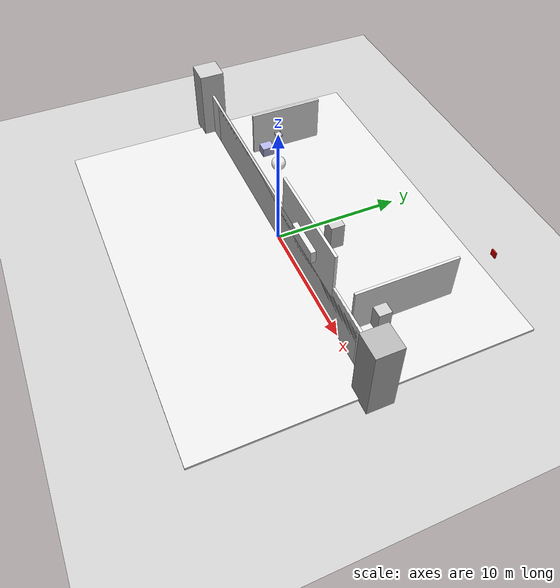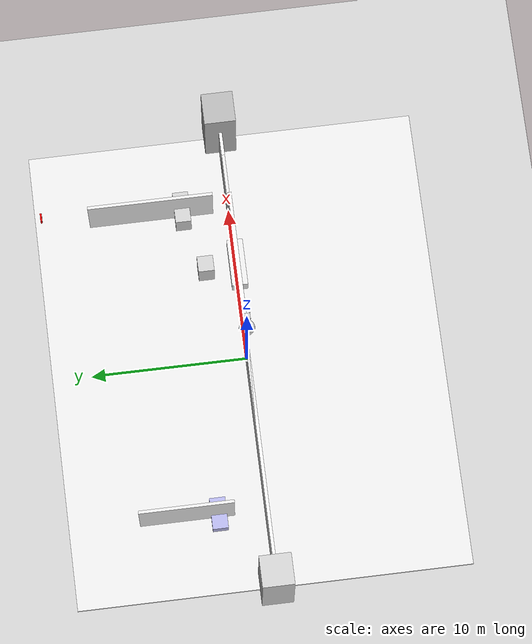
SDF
<?xml version="1.0"?>
<sdf version="1.6">
  <world name="hospital">
    <!-- Physics settings -->
    <physics name="default_physics" default="0" type="ode">
      <max_step_size>0.001</max_step_size>
      <real_time_factor>1</real_time_factor>
      <real_time_update_rate>1000</real_time_update_rate>
      <gravity>0 0 -9.81</gravity>
    </physics>

    <!-- Lighting -->
    <include>
      <uri>model://sun</uri>
    </include>

    <!-- Ground plane -->
    <include>
      <uri>model://ground_plane</uri>
    </include>

    <!-- Hospital Building Structure -->

    <!-- Ground Floor -->
    <!-- Main Entrance -->
    <model name="hospital_ground_floor">
      <pose>0 0 0.1 0 0 0</pose>
      <link name="ground_floor_link">
        <collision name="collision">
          <geometry>
            <box>
              <size>30 25 0.2</size>
            </box>
          </geometry>
        </collision>
        <visual name="visual">
          <geometry>
            <box>
              <size>30 25 0.2</size>
            </box>
          </geometry>
          <material>
            <ambient>0.9 0.9 0.9 1</ambient>
            <diffuse>0.9 0.9 0.9 1</diffuse>
          </material>
        </visual>
      </link>
    </model>

    <!-- Hospital Walls -->
    <model name="hospital_walls">
      <pose>0 0 2 0 0 0</pose>
      <link name="walls_link">
        <collision name="collision">
          <geometry>
            <box>
              <size>30 0.2 4</size>
            </box>
          </geometry>
        </collision>
        <visual name="visual">
          <geometry>
            <box>
              <size>30 0.2 4</size>
            </box>
          </geometry>
          <material>
            <ambient>0.95 0.95 0.95 1</ambient>
            <diffuse>0.95 0.95 0.95 1</diffuse>
          </material>
        </visual>
      </link>
    </model>

    <!-- Emergency Room -->
    <model name="emergency_room">
      <pose>10 5 2 0 0 0</pose>
      <link name="er_wall_1">
        <collision name="collision">
          <geometry>
            <box>
              <size>0.2 8 4</size>
            </box>
          </geometry>
        </collision>
        <visual name="visual">
          <geometry>
            <box>
              <size>0.2 8 4</size>
            </box>
          </geometry>
          <material>
            <ambient>0.9 0.9 0.9 1</ambient>
            <diffuse>0.9 0.9 0.9 1</diffuse>
          </material>
        </visual>
      </link>
    </model>

    <!-- Emergency Room Equipment -->
    <model name="er_equipment">
      <pose>10 3 1 0 0 0</pose>
      <link name="equipment_link">
        <collision name="collision">
          <geometry>
            <box>
              <size>2 1 2</size>
            </box>
          </geometry>
        </collision>
        <visual name="visual">
          <geometry>
            <box>
              <size>2 1 2</size>
            </box>
          </geometry>
          <material>
            <ambient>0.8 0.8 0.8 1</ambient>
            <diffuse>0.8 0.8 0.8 1</diffuse>
          </material>
        </visual>
      </link>
    </model>

    <!-- Patient Room -->
    <model name="patient_room">
      <pose>-10 5 2 0 0 0</pose>
      <link name="patient_wall_1">
        <collision name="collision">
          <geometry>
            <box>
              <size>0.2 6 4</size>
            </box>
          </geometry>
        </collision>
        <visual name="visual">
          <geometry>
            <box>
              <size>0.2 6 4</size>
            </box>
          </geometry>
          <material>
            <ambient>0.9 0.9 0.9 1</ambient>
            <diffuse>0.9 0.9 0.9 1</diffuse>
          </material>
        </visual>
      </link>
    </model>

    <!-- Patient Bed -->
    <model name="patient_bed">
      <pose>-10 3 0.5 0 0 0</pose>
      <link name="bed_link">
        <collision name="collision">
          <geometry>
            <box>
              <size>2 1 1</size>
            </box>
          </geometry>
        </collision>
        <visual name="visual">
          <geometry>
            <box>
              <size>2 1 1</size>
            </box>
          </geometry>
          <material>
            <ambient>0.7 0.7 0.9 1</ambient>
            <diffuse>0.7 0.7 0.9 1</diffuse>
          </material>
        </visual>
      </link>
    </model>

    <!-- Corridor -->
    <model name="main_corridor">
      <pose>0 0 2 0 0 0</pose>
      <link name="corridor_wall_1">
        <collision name="collision">
          <geometry>
            <box>
              <size>25 0.2 4</size>
            </box>
          </geometry>
        </collision>
        <visual name="visual">
          <geometry>
            <box>
              <size>25 0.2 4</size>
            </box>
          </geometry>
          <material>
            <ambient>0.9 0.9 0.9 1</ambient>
            <diffuse>0.9 0.9 0.9 1</diffuse>
          </material>
        </visual>
      </link>
    </model>

    <!-- Second Floor -->
    <!-- Operating Room -->
    <model name="operating_room">
      <pose>5 0 5 0 0 0</pose>
      <link name="or_wall_1">
        <collision name="collision">
          <geometry>
            <box>
              <size>8 0.2 4</size>
            </box>
          </geometry>
        </collision>
        <visual name="visual">
          <geometry>
            <box>
              <size>8 0.2 4</size>
            </box>
          </geometry>
          <material>
            <ambient>0.95 0.95 0.95 1</ambient>
            <diffuse>0.95 0.95 0.95 1</diffuse>
          </material>
        </visual>
      </link>
    </model>

    <!-- Operating Table -->
    <model name="operating_table">
      <pose>5 0 4.5 0 0 0</pose>
      <link name="table_link">
        <collision name="collision">
          <geometry>
            <box>
              <size>3 1 1</size>
            </box>
          </geometry>
        </collision>
        <visual name="visual">
          <geometry>
            <box>
              <size>3 1 1</size>
            </box>
          </geometry>
          <material>
            <ambient>0.9 0.9 0.9 1</ambient>
            <diffuse>0.9 0.9 0.9 1</diffuse>
          </material>
        </visual>
      </link>
    </model>

    <!-- Medical Equipment -->
    <model name="medical_equipment">
      <pose>5 2 4.5 0 0 0</pose>
      <link name="equipment_link">
        <collision name="collision">
          <geometry>
            <box>
              <size>1 1 2</size>
            </box>
          </geometry>
        </collision>
        <visual name="visual">
          <geometry>
            <box>
              <size>1 1 2</size>
            </box>
          </geometry>
          <material>
            <ambient>0.8 0.8 0.8 1</ambient>
            <diffuse>0.8 0.8 0.8 1</diffuse>
          </material>
        </visual>
      </link>
    </model>

    <!-- Stairwell -->
    <model name="stairwell">
      <pose>15 0 2 0 0 0</pose>
      <link name="stairwell_wall">
        <collision name="collision">
          <geometry>
            <box>
              <size>2 2 8</size>
            </box>
          </geometry>
        </collision>
        <visual name="visual">
          <geometry>
            <box>
              <size>2 2 8</size>
            </box>
          </geometry>
          <material>
            <ambient>0.7 0.7 0.7 1</ambient>
            <diffuse>0.7 0.7 0.7 1</diffuse>
          </material>
        </visual>
      </link>
    </model>

    <!-- Elevator -->
    <model name="elevator">
      <pose>-15 0 2 0 0 0</pose>
      <link name="elevator_wall">
        <collision name="collision">
          <geometry>
            <box>
              <size>2 2 8</size>
            </box>
          </geometry>
        </collision>
        <visual name="visual">
          <geometry>
            <box>
              <size>2 2 8</size>
            </box>
          </geometry>
          <material>
            <ambient>0.8 0.8 0.8 1</ambient>
            <diffuse>0.8 0.8 0.8 1</diffuse>
          </material>
        </visual>
      </link>
    </model>

    <!-- Lighting -->
    <!-- Ceiling Lights -->
    <model name="ceiling_light_1">
      <pose>0 0 7.5 0 0 0</pose>
      <link name="light_link">
        <visual name="visual">
          <geometry>
            <sphere>
              <radius>0.5</radius>
            </sphere>
          </geometry>
          <material>
            <ambient>1 1 1 1</ambient>
            <diffuse>1 1 1 1</diffuse>
            <emissive>1 1 1 1</emissive>
          </material>
        </visual>
      </link>
      <light type="point" name="ceiling_light_1">
        <pose>0 0 0 0 0 0</pose>
        <diffuse>1 1 1 1</diffuse>
        <specular>0.1 0.1 0.1 1</specular>
        <attenuation>
          <range>15</range>
          <constant>0.5</constant>
          <linear>0.01</linear>
          <quadratic>0.001</quadratic>
        </attenuation>
        <cast_shadows>true</cast_shadows>
      </light>
    </model>

    <!-- Emergency Exit Signs -->
    <model name="exit_sign_1">
      <pose>10 12 3 0 0 0</pose>
      <link name="sign_link">
        <visual name="visual">
          <geometry>
            <box>
              <size>0.5 0.1 0.5</size>
            </box>
          </geometry>
          <material>
            <ambient>1 0 0 1</ambient>
            <diffuse>1 0 0 1</diffuse>
            <emissive>1 0 0 1</emissive>
          </material>
        </visual>
      </link>
    </model>

    <!-- Spawn quadcopter -->
    <include>
      <uri>model://quadcopter</uri>
      <pose>0 0 10 0 0 0</pose>
    </include>

    <!-- GUI settings -->
    <gui fullscreen='0'>
      <camera name='user_camera'>
        <pose>30 -30 20 0 0.785 0.785</pose>
        <view_controller>orbit</view_controller>
        <projection_type>perspective</projection_type>
      </camera>
    </gui>

    <!-- Plugin for ROS 2 bridge -->
    <plugin name="gazebo_ros_state" filename="libgazebo_ros_state.so">
      <ros>
        <namespace>/gazebo</namespace>
        <remapping>model_states:=model_states</remapping>
        <remapping>link_states:=link_states</remapping>
      </ros>
    </plugin>

    <!-- Plugin for ROS 2 control -->
    <plugin name="gazebo_ros_control" filename="libgazebo_ros_control.so">
      <robotNamespace>/quadcopter</robotNamespace>
      <robotParam>robot_description</robotParam>
    </plugin>
  </world>
</sdf>

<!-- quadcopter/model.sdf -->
<sdf version="1.6">
  <model name="quadcopter">
    <link name="base_link">
      <pose>0 0 0 0 0 0</pose>
      <inertial>
        <mass>1.5</mass>
        <inertia>
          <ixx>0.029125</ixx>
          <ixy>0</ixy>
          <ixz>0</ixz>
          <iyy>0.029125</iyy>
          <iyz>0</iyz>
          <izz>0.055225</izz>
        </inertia>
      </inertial>
      <collision name="collision">
        <geometry>
          <box>
            <size>0.4 0.4 0.1</size>
          </box>
        </geometry>
      </collision>
      <visual name="visual">
        <geometry>
          <box>
            <size>0.4 0.4 0.1</size>
          </box>
        </geometry>
        <material>
          <ambient>0.8 0.8 0.8 1</ambient>
          <diffuse>0.8 0.8 0.8 1</diffuse>
        </material>
      </visual>
    </link>

    <!-- Front Left Motor -->
    <link name="motor_fl">
      <pose>0.2 0.2 0.05 0 0 0</pose>
      <inertial>
        <mass>0.1</mass>
        <inertia>
          <ixx>0.001</ixx>
          <ixy>0</ixy>
          <ixz>0</ixz>
          <iyy>0.001</iyy>
          <iyz>0</iyz>
          <izz>0.001</izz>
        </inertia>
      </inertial>
      <collision name="collision">
        <geometry>
          <cylinder>
            <radius>0.02</radius>
            <length>0.05</length>
          </cylinder>
        </geometry>
      </collision>
      <visual name="visual">
        <geometry>
          <cylinder>
            <radius>0.02</radius>
            <length>0.05</length>
          </cylinder>
        </geometry>
        <material>
          <ambient>0.2 0.2 0.2 1</ambient>
          <diffuse>0.2 0.2 0.2 1</diffuse>
        </material>
      </visual>
    </link>

    <!-- Front Right Motor -->
    <link name="motor_fr">
      <pose>-0.2 0.2 0.05 0 0 0</pose>
      <inertial>
        <mass>0.1</mass>
        <inertia>
          <ixx>0.001</ixx>
          <ixy>0</ixy>
          <ixz>0</ixz>
          <iyy>0.001</iyy>
          <iyz>0</iyz>
          <izz>0.001</izz>
        </inertia>
      </inertial>
      <collision name="collision">
        <geometry>
          <cylinder>
            <radius>0.02</radius>
            <length>0.05</length>
          </cylinder>
        </geometry>
      </collision>
      <visual name="visual">
        <geometry>
          <cylinder>
            <radius>0.02</radius>
            <length>0.05</length>
          </cylinder>
        </geometry>
        <material>
          <ambient>0.2 0.2 0.2 1</ambient>
          <diffuse>0.2 0.2 0.2 1</diffuse>
        </material>
      </visual>
    </link>

    <!-- Rear Left Motor -->
    <link name="motor_rl">
      <pose>0.2 -0.2 0.05 0 0 0</pose>
      <inertial>
        <mass>0.1</mass>
        <inertia>
          <ixx>0.001</ixx>
          <ixy>0</ixy>
          <ixz>0</ixz>
          <iyy>0.001</iyy>
          <iyz>0</iyz>
          <izz>0.001</izz>
        </inertia>
      </inertial>
      <collision name="collision">
        <geometry>
          <cylinder>
            <radius>0.02</radius>
            <length>0.05</length>
          </cylinder>
        </geometry>
      </collision>
      <visual name="visual">
        <geometry>
          <cylinder>
            <radius>0.02</radius>
            <length>0.05</length>
          </cylinder>
        </geometry>
        <material>
          <ambient>0.2 0.2 0.2 1</ambient>
          <diffuse>0.2 0.2 0.2 1</diffuse>
        </material>
      </visual>
    </link>

    <!-- Rear Right Motor -->
    <link name="motor_rr">
      <pose>-0.2 -0.2 0.05 0 0 0</pose>
      <inertial>
        <mass>0.1</mass>
        <inertia>
          <ixx>0.001</ixx>
          <ixy>0</ixy>
          <ixz>0</ixz>
          <iyy>0.001</iyy>
          <iyz>0</iyz>
          <izz>0.001</izz>
        </inertia>
      </inertial>
      <collision name="collision">
        <geometry>
          <cylinder>
            <radius>0.02</radius>
            <length>0.05</length>
          </cylinder>
        </geometry>
      </collision>
      <visual name="visual">
        <geometry>
          <cylinder>
            <radius>0.02</radius>
            <length>0.05</length>
          </cylinder>
        </geometry>
        <material>
          <ambient>0.2 0.2 0.2 1</ambient>
          <diffuse>0.2 0.2 0.2 1</diffuse>
        </material>
      </visual>
    </link>

    <!-- IMU Sensor -->
    <link name="imu_link">
      <pose>0 0 0.05 0 0 0</pose>
      <sensor name="imu_sensor" type="imu">
        <always_on>true</always_on>
        <update_rate>100</update_rate>
        <visualize>true</visualize>
        <topic>quadcopter/sensors/imu</topic>
        <frame_name>imu_link</frame_name>
        <ros>
          <namespace>/quadcopter</namespace>
          <remapping>sensors/imu:=sensors/imu</remapping>
        </ros>
      </sensor>
    </link>

    <!-- GPS Sensor -->
    <link name="gps_link">
      <pose>0 0 0.05 0 0 0</pose>
      <sensor name="gps_sensor" type="gps">
        <always_on>true</always_on>
        <update_rate>10</update_rate>
        <visualize>true</visualize>
        <topic>quadcopter/sensors/gps</topic>
        <frame_name>gps_link</frame_name>
        <ros>
          <namespace>/quadcopter</namespace>
          <remapping>sensors/gps:=sensors/gps</remapping>
        </ros>
      </sensor>
    </link>

    <!-- Altitude Sensor -->
    <link name="altitude_link">
      <pose>0 0 -0.05 0 0 0</pose>
      <sensor name="altitude_sensor" type="ray">
        <always_on>true</always_on>
        <update_rate>50</update_rate>
        <visualize>true</visualize>
        <topic>quadcopter/sensors/altitude</topic>
        <frame_name>altitude_link</frame_name>
        <ray>
          <scan>
            <horizontal>
              <samples>1</samples>
              <resolution>1</resolution>
              <min_angle>0</min_angle>
              <max_angle>0</max_angle>
            </horizontal>
          </scan>
          <range>
            <min>0.1</min>
            <max>50</max>
            <resolution>0.01</resolution>
          </range>
        </ray>
        <ros>
          <namespace>/quadcopter</namespace>
          <remapping>sensors/altitude:=sensors/altitude</remapping>
        </ros>
      </sensor>
    </link>

    <!-- Joints -->
    <joint name="motor_fl_joint" type="revolute">
      <parent>base_link</parent>
      <child>motor_fl</child>
      <axis>
        <xyz>0 0 1</xyz>
      </axis>
    </joint>

    <joint name="motor_fr_joint" type="revolute">
      <parent>base_link</parent>
      <child>motor_fr</child>
      <axis>
        <xyz>0 0 1</xyz>
      </axis>
    </joint>

    <joint name="motor_rl_joint" type="revolute">
      <parent>base_link</parent>
      <child>motor_rl</child>
      <axis>
        <xyz>0 0 1</xyz>
      </axis>
    </joint>

    <joint name="motor_rr_joint" type="revolute">
      <parent>base_link</parent>
      <child>motor_rr</child>
      <axis>
        <xyz>0 0 1</xyz>
      </axis>
    </joint>

    <joint name="imu_joint" type="fixed">
      <parent>base_link</parent>
      <child>imu_link</child>
    </joint>

    <joint name="gps_joint" type="fixed">
      <parent>base_link</parent>
      <child>gps_link</child>
    </joint>

    <joint name="altitude_joint" type="fixed">
      <parent>base_link</parent>
      <child>altitude_link</child>
    </joint>

    <!-- Plugin for quadcopter dynamics -->
    <plugin name="quadcopter_plugin" filename="libgazebo_ros_planar_move.so">
      <commandTopic>quadcopter/control/velocity</commandTopic>
      <odometryTopic>quadcopter/state/odometry</odometryTopic>
      <odometryFrame>odom</odometryFrame>
      <odometryRate>20</odometryRate>
      <robotBaseFrame>base_link</robotBaseFrame>
    </plugin>

    <!-- Plugin for motor control -->
    <plugin name="motor_controller" filename="libgazebo_ros_force.so">
      <bodyName>base_link</bodyName>
      <topicName>quadcopter/control/motors</topicName>
    </plugin>
  </model>
</sdf>
